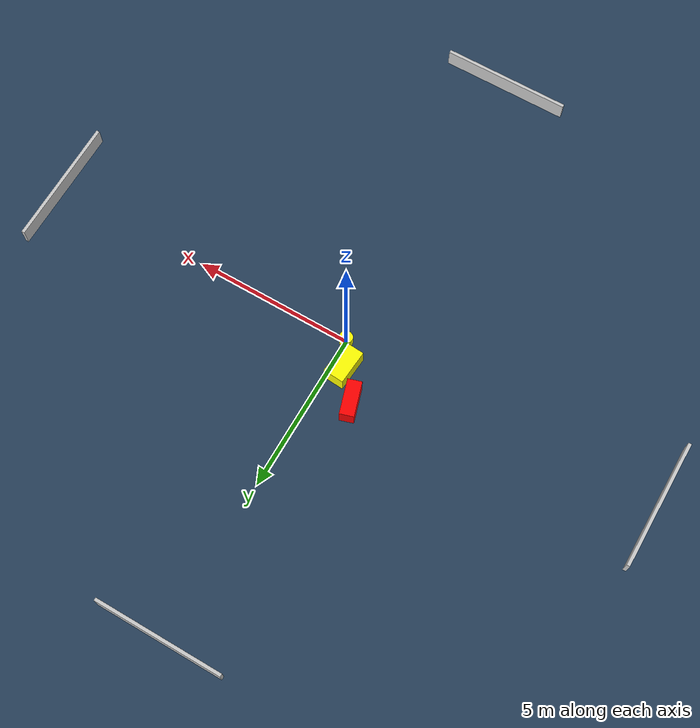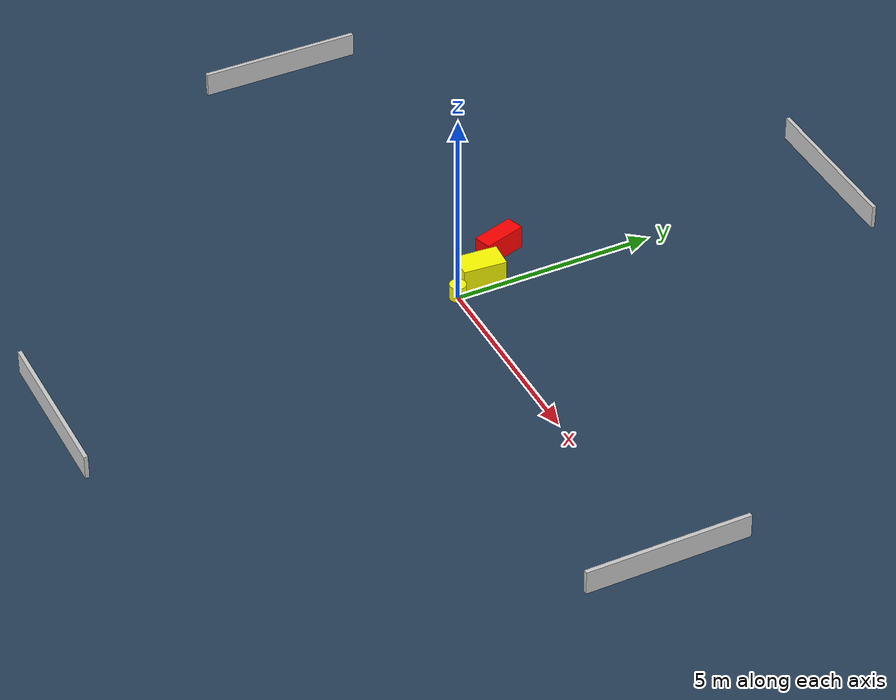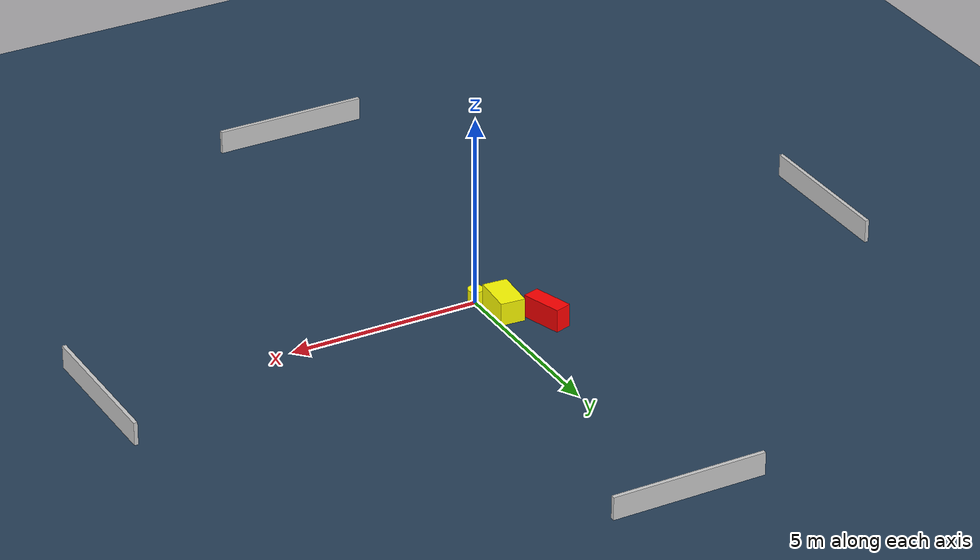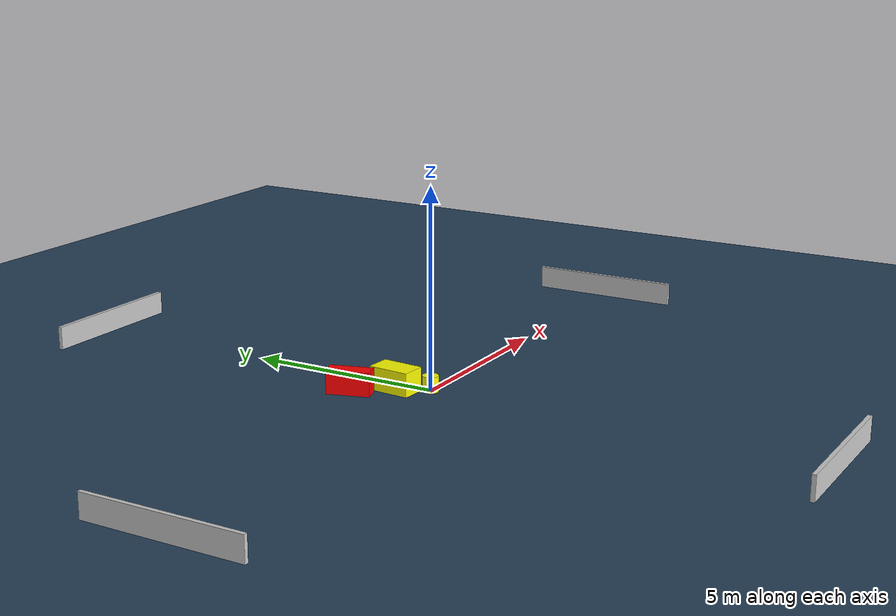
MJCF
<?xml version="1.0" ?>
<mujoco model="generated_environment">
  <option timestep="0.01" integrator="RK4" cone="elliptic"/>
  <default>
    <geom density="1"/>
  </default>
  <asset>
    <texture builtin="gradient" height="3072" name="skybox" rgb1="0.3 0.5 0.7" rgb2="0 0 0" type="skybox" width="512"/>
    <texture builtin="checker" height="300" name="groundplane" rgb1="0.2 0.3 0.4" rgb2="0.1 0.2 0.3" type="2d" width="300"/>
    <material name="groundplane" reflectance="0.2" texrepeat="5 5" texture="groundplane"/>
  </asset>
  <worldbody>
    <light dir="0 0 -1" directional="true" pos="0 0 1.5"/>
    <geom condim="3" friction="0.5 0.005 0.001" material="groundplane" name="floor" pos="0 0 0" size="0 0 0.05" type="plane"/>
    <body name="walls">
      <geom name="wall_1" condim="4" pos="-10.0 0.0 0.3" rgba="0.800000011920929 0.800000011920929 0.800000011920929 1.0" size="0.05 2.0 0.3" type="box"/>
      <geom name="wall_2" condim="4" pos="10.0 0.0 0.3" rgba="0.800000011920929 0.800000011920929 0.800000011920929 1.0" size="0.05 2.0 0.3" type="box"/>
      <geom name="wall_3" condim="4" pos="0.0 -10.0 0.3" rgba="0.800000011920929 0.800000011920929 0.800000011920929 1.0" size="2.0 0.05 0.3" type="box"/>
      <geom name="wall_4" condim="4" pos="0.0 10.0 0.3" rgba="0.800000011920929 0.800000011920929 0.800000011920929 1.0" size="2.0 0.05 0.3" type="box"/>
    </body>
    <body name="robot">
      <joint name="joint_x" type="slide" pos="0 0 0" axis="1 0 0"/>
      <joint name="joint_y" type="slide" pos="0 0 0" axis="0 1 0"/>
      <geom name="robot" type="cylinder" pos="0.0 0.0 0.2" size="0.2 0.2 0.0" mass="5.0" friction="1.0 0.005 0.0001" condim="4" rgba="1.0 1.0 0.0 1.0"/>
    </body>
    <body name="obstacle_1_movable">
      <geom name="obstacle_1_movable" condim="4" pos="-0.359704630907656 0.7617879497346541 0.3" euler="0 0 175.6567006201865" friction="0.0 0.005 0.001" rgba="1.0 1.0 0.0 1.0" size="0.318934729887897 0.5341325083355438 0.3" type="box" mass="0.1"/>
      <joint type="free"/>
    </body>
    <body name="obstacle_2_static">
      <geom name="obstacle_2_static" condim="4" pos="-1.0809792555325797 1.6037967997011568 0.3" euler="0 0 17.246164130998825" friction="0.0 0.005 0.001" rgba="1.0 0.0 0.0 1.0" size="0.21927997248566694 0.5426406974502758 0.3" type="box"/>
    </body>
  </worldbody>
  <actuator>
    <motor name="actuator_x" joint="joint_x" gear="1" ctrlrange="-1 1"/>
    <motor name="actuator_y" joint="joint_y" gear="1" ctrlrange="-1 1"/>
  </actuator>
</mujoco>
